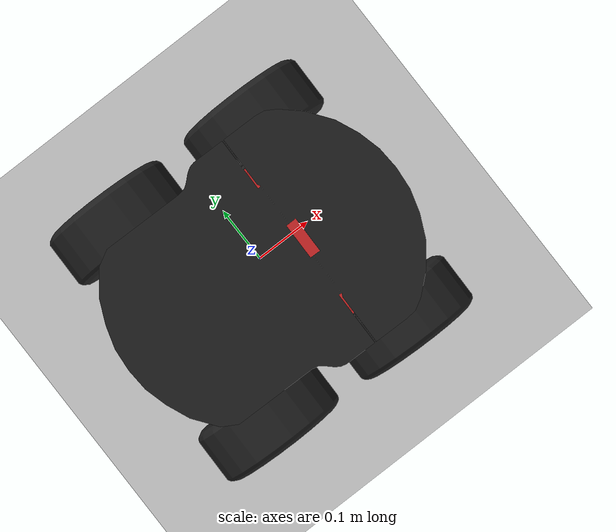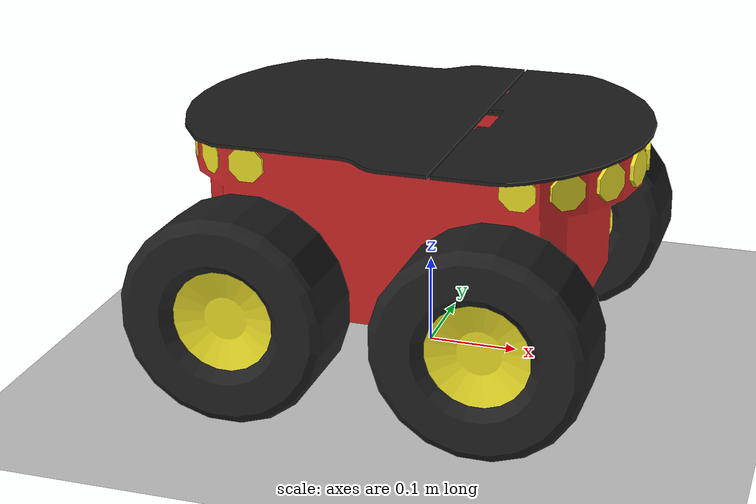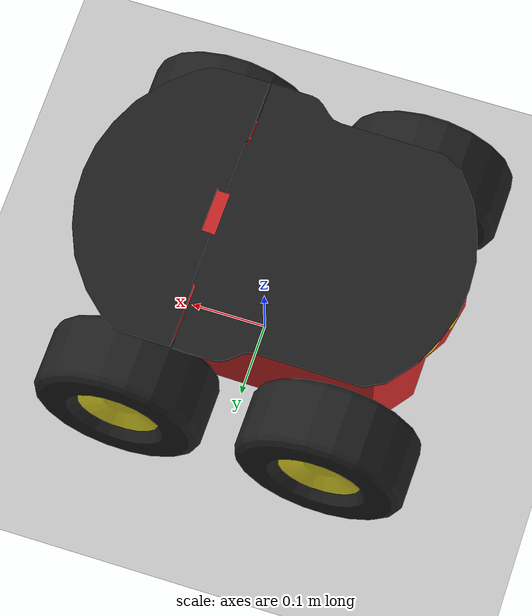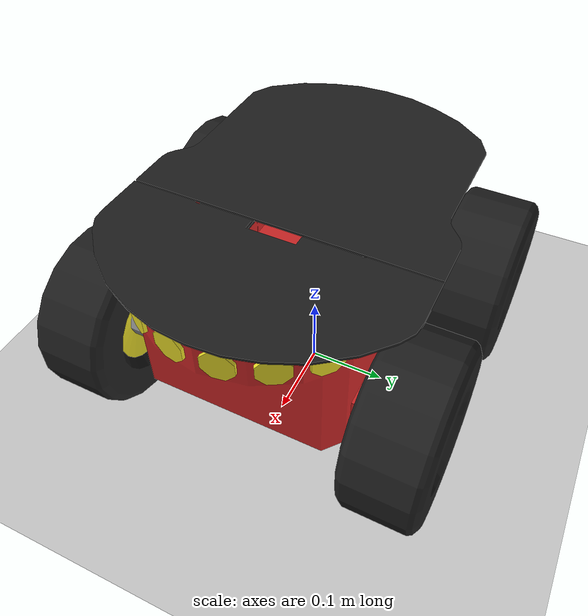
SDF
<sdf version="1.6">
 <world name="default">
  <light name="sun" type="directional">
   <pose>0 0 10 0 -0 0</pose>
   <diffuse>0.8 0.8 0.8 1</diffuse>
   <specular>0.2 0.2 0.2 1</specular>
   <attenuation>
    <range>1000</range>
    <constant>0.9</constant>
    <linear>0.01</linear>
    <quadratic>0.001</quadratic>
   </attenuation>
   <direction>-0.5 0.1 -0.9</direction>
  </light>
  <model name="ground_plane">
   <static>1</static>
   <link name="link">
    <collision name="collision">
     <geometry><plane><normal>0 0 1</normal><size>100 100</size></plane></geometry>
     <surface><friction><ode><mu>100</mu><mu2>50</mu2></ode></friction></surface>
    </collision>
    <visual name="visual">
     <cast_shadows>0</cast_shadows>
     <geometry><plane><normal>0 0 1</normal><size>100 100</size></plane></geometry>
     <material>
      <script><uri>file://media/materials/scripts/gazebo.material</uri><name>Gazebo/Grey</name></script>
     </material>
    </visual>
   </link>
  </model>
  <physics name="default_physics" default="0" type="ode">
   <max_step_size>0.01</max_step_size>
   <real_time_factor>1</real_time_factor>
   <real_time_update_rate>100</real_time_update_rate>
  </physics>
  <gravity>0 0 -9.8</gravity>
  <magnetic_field>6e-06 2.3e-05 -4.2e-05</magnetic_field>
  <atmosphere type="adiabatic"/>
  <scene><ambient>0.4 0.4 0.4 1</ambient><background>0.7 0.7 0.7 1</background><shadows>1</shadows></scene>
  <spherical_coordinates>
   <surface_model>EARTH_WGS84</surface_model>
   <latitude_deg>0</latitude_deg>
   <longitude_deg>0</longitude_deg>
   <elevation>0</elevation>
   <heading_deg>0</heading_deg>
  </spherical_coordinates>
  <model name="pioneer3at">
   <link name="base_link">
    <inertial>
     <pose>-0.095186 0 0.174739 0 -0 0</pose>
     <mass>22.6</mass>
     <inertia>
      <ixx>11.365</ixx>
      <ixy>-6.60484e-19</ixy>
      <ixz>0.0045133</ixz>
      <iyy>11.5163</iyy>
      <iyz>1.21249e-18</iyz>
      <izz>11.391</izz>
     </inertia>
    </inertial>
    <collision name="base_link_collision">
     <pose>0 0 0.177 0 -0 0</pose>
     <geometry>
      <mesh>
       <scale>1 1 1</scale>
       <uri>/home/fmccastro/ROS_workspace/ws_1/src/amr-ros-config/description/meshes/p3at_meshes/chassis.stl</uri>
      </mesh>
     </geometry>
    </collision>
    <collision name="base_link_fixed_joint_lump__p3at_back_left_axle_collision_1">
     <pose>-0.134 0.156 0.111 0 -0 0</pose>
     <geometry>
      <mesh>
       <scale>1 1 1</scale>
       <uri>/home/fmccastro/ROS_workspace/ws_1/src/amr-ros-config/description/meshes/p3at_meshes/axle.stl</uri>
      </mesh>
     </geometry>
    </collision>
    <collision name="base_link_fixed_joint_lump__p3at_back_left_hub_collision_2">
     <pose>-0.134 0.197 0.111 0 -0 0</pose>
     <geometry>
      <mesh>
       <scale>1 1 1</scale>
       <uri>/home/fmccastro/ROS_workspace/ws_1/src/amr-ros-config/description/meshes/p3at_meshes/left_hubcap.stl</uri>
      </mesh>
     </geometry>
    </collision>
    <collision name="base_link_fixed_joint_lump__p3at_back_right_axle_collision_3">
     <pose>-0.134 -0.156 0.111 0 -0 0</pose>
     <geometry>
      <mesh>
       <scale>1 1 1</scale>
       <uri>/home/fmccastro/ROS_workspace/ws_1/src/amr-ros-config/description/meshes/p3at_meshes/axle.stl</uri>
      </mesh>
     </geometry>
    </collision>
    <collision name="base_link_fixed_joint_lump__p3at_back_right_hub_collision_4">
     <pose>-0.134 -0.197 0.111 0 -0 0</pose>
     <geometry>
      <mesh>
       <scale>1 1 1</scale>
       <uri>/home/fmccastro/ROS_workspace/ws_1/src/amr-ros-config/description/meshes/p3at_meshes/right_hubcap.stl</uri>
      </mesh>
     </geometry>
    </collision>
    <visual name="base_link_visual">
     <pose>0 0 0.177 0 -0 0</pose>
     <geometry>
      <mesh>
       <scale>1 1 1</scale>
       <uri>/home/fmccastro/ROS_workspace/ws_1/src/amr-ros-config/description/meshes/p3at_meshes/chassis.stl</uri>
      </mesh>
     </geometry>
     <material>
      <script><name>Gazebo/Red</name><uri>file://media/materials/scripts/gazebo.material</uri></script>
     </material>
    </visual>
    <visual name="base_link_fixed_joint_lump__back_sonar_visual_1">
     <pose>-0.187 0 0.247 0 -0 0</pose>
     <geometry>
      <mesh>
       <scale>1 1 1</scale>
       <uri>/home/fmccastro/ROS_workspace/ws_1/src/amr-ros-config/description/meshes/p3at_meshes/back_sonar.stl</uri>
      </mesh>
     </geometry>
     <material>
      <script><name>Gazebo/Yellow</name><uri>file://media/materials/scripts/gazebo.material</uri></script>
     </material>
    </visual>
    <visual name="base_link_fixed_joint_lump__front_sonar_visual_2">
     <pose>0.193 0 0.25 0 -0 0</pose>
     <geometry>
      <mesh>
       <scale>1 1 1</scale>
       <uri>/home/fmccastro/ROS_workspace/ws_1/src/amr-ros-config/description/meshes/p3at_meshes/front_sonar.stl</uri>
      </mesh>
     </geometry>
     <material>
      <script><name>Gazebo/Yellow</name><uri>file://media/materials/scripts/gazebo.material</uri></script>
     </material>
    </visual>
    <visual name="base_link_fixed_joint_lump__p3at_front_left_axle_visual_3">
     <pose>0.135 0.156 0.111 0 -0 0</pose>
     <geometry>
      <mesh>
       <scale>1 1 1</scale>
       <uri>/home/fmccastro/ROS_workspace/ws_1/src/amr-ros-config/description/meshes/p3at_meshes/axle.stl</uri>
      </mesh>
     </geometry>
     <material>
      <script><name>Gazebo/Grey</name><uri>file://media/materials/scripts/gazebo.material</uri></script>
     </material>
    </visual>
    <visual name="base_link_fixed_joint_lump__p3at_front_left_hub_visual_4">
     <pose>0.135 0.197 0.111 0 -0 0</pose>
     <geometry>
      <mesh>
       <scale>1 1 1</scale>
       <uri>/home/fmccastro/ROS_workspace/ws_1/src/amr-ros-config/description/meshes/p3at_meshes/left_hubcap.stl</uri>
      </mesh>
     </geometry>
     <material>
      <script><name>Gazebo/Yellow</name><uri>file://media/materials/scripts/gazebo.material</uri></script>
     </material>
    </visual>
    <visual name="base_link_fixed_joint_lump__p3at_front_right_axle_visual_5">
     <pose>0.135 -0.156 0.111 0 -0 0</pose>
     <geometry>
      <mesh>
       <scale>1 1 1</scale>
       <uri>/home/fmccastro/ROS_workspace/ws_1/src/amr-ros-config/description/meshes/p3at_meshes/axle.stl</uri>
      </mesh>
     </geometry>
     <material>
      <script><name>Gazebo/Grey</name><uri>file://media/materials/scripts/gazebo.material</uri></script>
     </material>
    </visual>
    <visual name="base_link_fixed_joint_lump__p3at_front_right_hub_visual_6">
     <pose>0.135 -0.197 0.111 0 -0 0</pose>
     <geometry>
      <mesh>
       <scale>1 1 1</scale>
       <uri>/home/fmccastro/ROS_workspace/ws_1/src/amr-ros-config/description/meshes/p3at_meshes/right_hubcap.stl</uri>
      </mesh>
     </geometry>
     <material>
      <script><name>Gazebo/Yellow</name><uri>file://media/materials/scripts/gazebo.material</uri></script>
     </material>
    </visual>
    <visual name="base_link_fixed_joint_lump__top_plate_visual_7">
     <pose>0.003 0 0.274 0 -0 0</pose>
     <geometry>
      <mesh>
       <scale>1 1 1</scale>
       <uri>/home/fmccastro/ROS_workspace/ws_1/src/amr-ros-config/description/meshes/p3at_meshes/top.stl</uri>
      </mesh>
     </geometry>
     <material>
      <script><name>Gazebo/Black</name><uri>file://media/materials/scripts/gazebo.material</uri></script>
     </material>
    </visual>
    <visual name="base_link_fixed_joint_lump__p3at_back_left_axle_visual_8">
     <pose>-0.134 0.156 0.111 0 -0 0</pose>
     <geometry>
      <mesh>
       <scale>1 1 1</scale>
       <uri>/home/fmccastro/ROS_workspace/ws_1/src/amr-ros-config/description/meshes/p3at_meshes/axle.stl</uri>
      </mesh>
     </geometry>
     <material>
      <script><name>Gazebo/Grey</name><uri>file://media/materials/scripts/gazebo.material</uri></script>
     </material>
    </visual>
    <visual name="base_link_fixed_joint_lump__p3at_back_left_hub_visual_9">
     <pose>-0.134 0.197 0.111 0 -0 0</pose>
     <geometry>
      <mesh>
       <scale>1 1 1</scale>
       <uri>/home/fmccastro/ROS_workspace/ws_1/src/amr-ros-config/description/meshes/p3at_meshes/left_hubcap.stl</uri>
      </mesh>
     </geometry>
     <material>
      <script><name>Gazebo/Yellow</name><uri>file://media/materials/scripts/gazebo.material</uri></script>
     </material>
    </visual>
    <visual name="base_link_fixed_joint_lump__p3at_back_right_axle_visual_10">
     <pose>-0.134 -0.156 0.111 0 -0 0</pose>
     <geometry>
      <mesh>
       <scale>1 1 1</scale>
       <uri>/home/fmccastro/ROS_workspace/ws_1/src/amr-ros-config/description/meshes/p3at_meshes/axle.stl</uri>
      </mesh>
     </geometry>
     <material>
      <script><name>Gazebo/Grey</name><uri>file://media/materials/scripts/gazebo.material</uri></script>
     </material>
    </visual>
    <visual name="base_link_fixed_joint_lump__p3at_back_right_hub_visual_11">
     <pose>-0.134 -0.197 0.111 0 -0 0</pose>
     <geometry>
      <mesh>
       <scale>1 1 1</scale>
       <uri>/home/fmccastro/ROS_workspace/ws_1/src/amr-ros-config/description/meshes/p3at_meshes/right_hubcap.stl</uri>
      </mesh>
     </geometry>
     <material>
      <script><name>Gazebo/Yellow</name><uri>file://media/materials/scripts/gazebo.material</uri></script>
     </material>
    </visual>
   </link>
   <link name="p3at_front_left_wheel">
    <pose>0.135 0.197 0.111 0 -0 0</pose>
    <inertial>
     <mass>1.2</mass>
     <inertia>
      <ixx>0.0124118</ixx>
      <ixy>0</ixy>
      <ixz>0</ixz>
      <iyy>0.0152182</iyy>
      <iyz>0</iyz>
      <izz>0.011764</izz>
     </inertia>
    </inertial>
    <collision name="p3at_front_left_wheel_collision">
     <pose>0 0 0 -1.5708 0 0</pose>
     <geometry><cylinder><length>0.075</length><radius>0.111</radius></cylinder></geometry>
     <surface>
      <contact><ode><kp>1e+06</kp><kd>100</kd><max_vel>1</max_vel><min_depth>0</min_depth></ode></contact>
      <friction><ode><mu>1</mu><mu2>1</mu2></ode></friction>
     </surface>
    </collision>
    <visual name="p3at_front_left_wheel_visual">
     <geometry>
      <mesh>
       <scale>1 1 1</scale>
       <uri>/home/fmccastro/ROS_workspace/ws_1/src/amr-ros-config/description/meshes/p3at_meshes/wheel.stl</uri>
      </mesh>
     </geometry>
     <material>
      <script><name>Gazebo/Black</name><uri>file://media/materials/scripts/gazebo.material</uri></script>
     </material>
    </visual>
   </link>
   <joint name="p3at_front_left_wheel_joint" type="revolute">
    <child>p3at_front_left_wheel</child>
    <parent>base_link</parent>
    <axis>
     <xyz>0 1 0</xyz>
     <limit><lower>-1e+16</lower><upper>1e+16</upper></limit>
     <dynamics><spring_reference>0</spring_reference><spring_stiffness>0</spring_stiffness></dynamics>
     <use_parent_model_frame>0</use_parent_model_frame>
    </axis>
   </joint>
   <link name="p3at_front_right_wheel">
    <pose>0.135 -0.197 0.111 0 -0 0</pose>
    <inertial>
     <mass>1.2</mass>
     <inertia>
      <ixx>0.0124118</ixx>
      <ixy>0</ixy>
      <ixz>0</ixz>
      <iyy>0.0152182</iyy>
      <iyz>0</iyz>
      <izz>0.011764</izz>
     </inertia>
    </inertial>
    <collision name="p3at_front_right_wheel_collision">
     <pose>0 0 0 -1.5708 0 0</pose>
     <geometry><cylinder><length>0.075</length><radius>0.111</radius></cylinder></geometry>
     <surface>
      <contact><ode><kp>1e+06</kp><kd>100</kd><max_vel>1</max_vel><min_depth>0</min_depth></ode></contact>
      <friction><ode><mu>1</mu><mu2>1</mu2></ode></friction>
     </surface>
    </collision>
    <visual name="p3at_front_right_wheel_visual">
     <geometry>
      <mesh>
       <scale>1 1 1</scale>
       <uri>/home/fmccastro/ROS_workspace/ws_1/src/amr-ros-config/description/meshes/p3at_meshes/wheel.stl</uri>
      </mesh>
     </geometry>
     <material>
      <script><name>Gazebo/Black</name><uri>file://media/materials/scripts/gazebo.material</uri></script>
     </material>
    </visual>
   </link>
   <joint name="p3at_front_right_wheel_joint" type="revolute">
    <child>p3at_front_right_wheel</child>
    <parent>base_link</parent>
    <axis>
     <xyz>0 1 0</xyz>
     <limit><lower>-1e+16</lower><upper>1e+16</upper></limit>
     <dynamics><spring_reference>0</spring_reference><spring_stiffness>0</spring_stiffness></dynamics>
     <use_parent_model_frame>0</use_parent_model_frame>
    </axis>
   </joint>
   <link name="p3at_back_left_wheel">
    <pose>-0.134 0.197 0.111 0 -0 0</pose>
    <inertial>
     <mass>1.2</mass>
     <inertia>
      <ixx>0.0124118</ixx>
      <ixy>0</ixy>
      <ixz>0</ixz>
      <iyy>0.0152182</iyy>
      <iyz>0</iyz>
      <izz>0.011764</izz>
     </inertia>
    </inertial>
    <collision name="p3at_back_left_wheel_collision">
     <pose>0 0 0 -1.5708 0 0</pose>
     <geometry><cylinder><length>0.075</length><radius>0.111</radius></cylinder></geometry>
     <surface>
      <contact><ode><kp>1e+06</kp><kd>100</kd><max_vel>1</max_vel><min_depth>0</min_depth></ode></contact>
      <friction><ode><mu>1</mu><mu2>1</mu2></ode></friction>
     </surface>
    </collision>
    <visual name="p3at_back_left_wheel_visual">
     <geometry>
      <mesh>
       <scale>1 1 1</scale>
       <uri>/home/fmccastro/ROS_workspace/ws_1/src/amr-ros-config/description/meshes/p3at_meshes/wheel.stl</uri>
      </mesh>
     </geometry>
     <material>
      <script><name>Gazebo/Black</name><uri>file://media/materials/scripts/gazebo.material</uri></script>
     </material>
    </visual>
   </link>
   <joint name="p3at_back_left_wheel_joint" type="revolute">
    <child>p3at_back_left_wheel</child>
    <parent>base_link</parent>
    <axis>
     <xyz>0 1 0</xyz>
     <limit><lower>-1e+16</lower><upper>1e+16</upper></limit>
     <dynamics><spring_reference>0</spring_reference><spring_stiffness>0</spring_stiffness></dynamics>
     <use_parent_model_frame>0</use_parent_model_frame>
    </axis>
   </joint>
   <link name="p3at_back_right_wheel">
    <pose>-0.134 -0.197 0.111 0 -0 0</pose>
    <inertial>
     <mass>1.2</mass>
     <inertia>
      <ixx>0.0124118</ixx>
      <ixy>0</ixy>
      <ixz>0</ixz>
      <iyy>0.0152182</iyy>
      <iyz>0</iyz>
      <izz>0.011764</izz>
     </inertia>
    </inertial>
    <collision name="p3at_back_right_wheel_collision">
     <pose>0 0 0 -1.5708 0 0</pose>
     <geometry><cylinder><length>0.075</length><radius>0.111</radius></cylinder></geometry>
     <surface>
      <contact><ode><kp>1e+06</kp><kd>100</kd><max_vel>1</max_vel><min_depth>0</min_depth></ode></contact>
      <friction><ode><mu>1</mu><mu2>1</mu2></ode></friction>
     </surface>
    </collision>
    <visual name="p3at_back_right_wheel_visual">
     <geometry>
      <mesh>
       <scale>1 1 1</scale>
       <uri>/home/fmccastro/ROS_workspace/ws_1/src/amr-ros-config/description/meshes/p3at_meshes/wheel.stl</uri>
      </mesh>
     </geometry>
     <material>
      <script><name>Gazebo/Black</name><uri>file://media/materials/scripts/gazebo.material</uri></script>
     </material>
    </visual>
   </link>
   <joint name="p3at_back_right_wheel_joint" type="revolute">
    <child>p3at_back_right_wheel</child>
    <parent>base_link</parent>
    <axis>
     <xyz>0 1 0</xyz>
     <limit><lower>-1e+16</lower><upper>1e+16</upper></limit>
     <dynamics><spring_reference>0</spring_reference><spring_stiffness>0</spring_stiffness></dynamics>
     <use_parent_model_frame>0</use_parent_model_frame>
    </axis>
   </joint>
   <static>0</static>
   <plugin name="skid_steer_drive_controller" filename="libgazebo_ros_skid_steer_drive.so">
    <updateRate>100.0</updateRate>
    <robotNamespace>pioneer3at</robotNamespace>
    <leftFrontJoint>p3at_front_left_wheel_joint</leftFrontJoint>
    <rightFrontJoint>p3at_front_right_wheel_joint</rightFrontJoint>
    <leftRearJoint>p3at_back_left_wheel_joint</leftRearJoint>
    <rightRearJoint>p3at_back_right_wheel_joint</rightRearJoint>
    <wheelSeparation>0.4</wheelSeparation>
    <wheelDiameter>0.222</wheelDiameter>
    <robotBaseFrame>base_link</robotBaseFrame>
    <MaxForce>5.0</MaxForce>
    <torque>200</torque>
    <commandTopic>cmd_vel</commandTopic>
    <odometryTopic>odom</odometryTopic>
    <odometryFrame>odom</odometryFrame>
    <broadcastTF>1</broadcastTF>
    <covariance_x>0.0001</covariance_x>
    <covariance_y>0.0001</covariance_y>
    <covariance_yaw>0.01</covariance_yaw>
    <publishWheelJointState>1</publishWheelJointState>
   </plugin>
   <pose>-0.011326 -0.017225 -1e-05 0.0001 -0.000719 -0.013381</pose>
  </model>
 </world>
</sdf>
